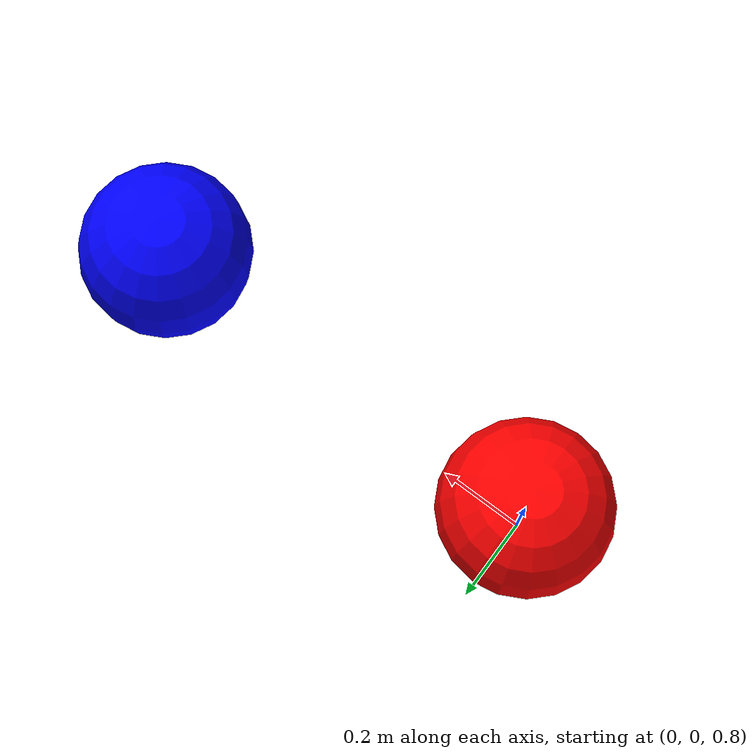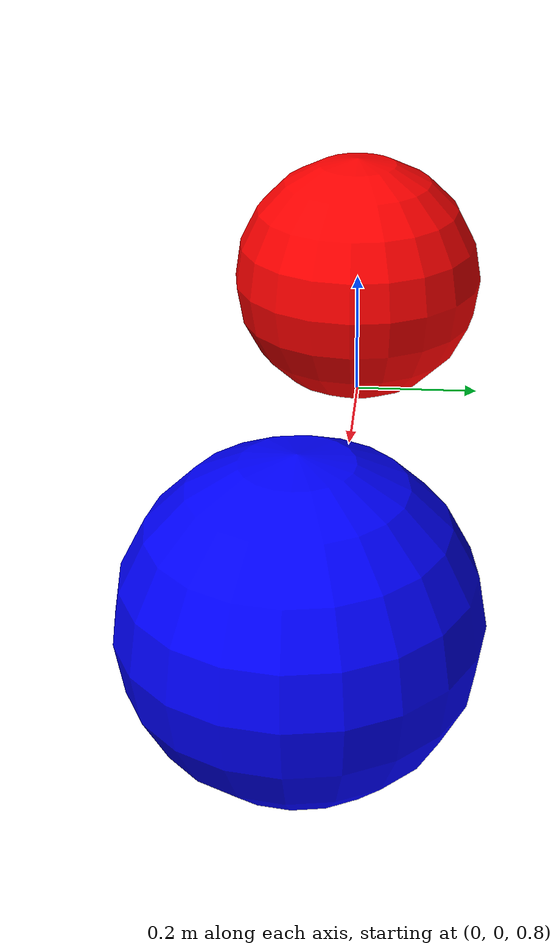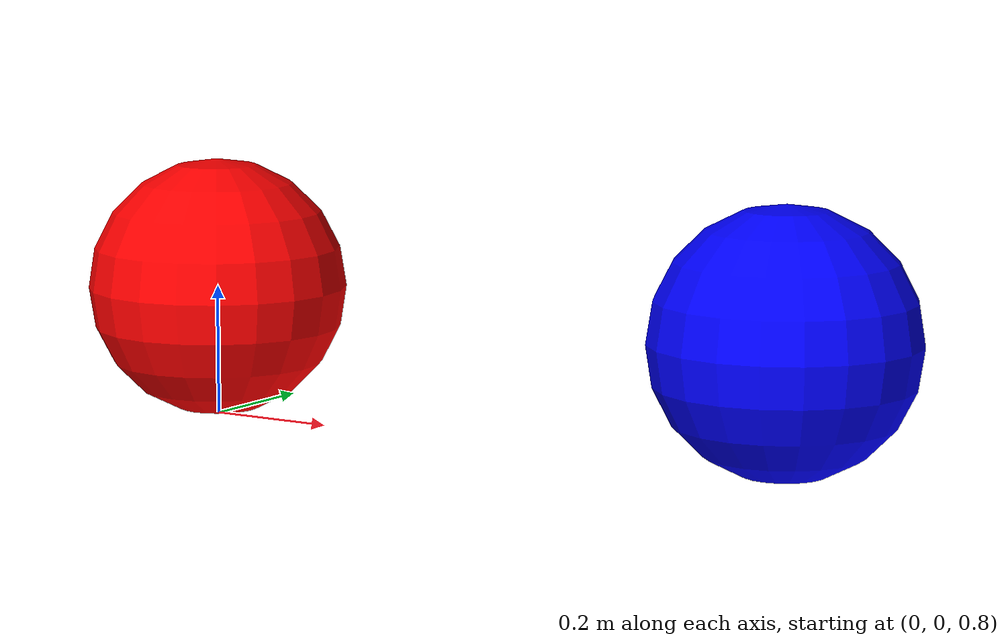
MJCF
<mujoco model="collision_detection_torque_test">
    <option timestep="0.005" gravity="0 0 -9.81"/>
    <worldbody>

        <!-- Sphere 1 -->
        <body name="object_1" pos="0 0 1">
            <geom type="sphere" size="0.2" density="1.0" rgba="1 0 0 1"/>
            <joint name="object_1_joint" type="free"/>
        </body>

        <!-- Sphere 2 -->
        <body name="object_2" pos="1 0 1">
            <geom type="sphere" size="0.2" density="1.0" rgba="0 0 1 1"/>
            <joint name="object_2_joint" type="free"/>
        </body>
    </worldbody>
</mujoco>
